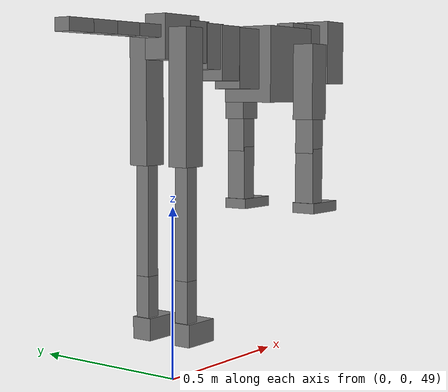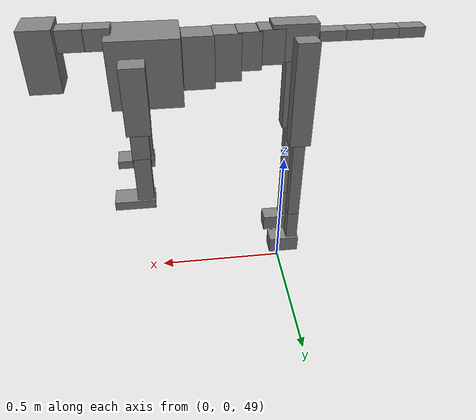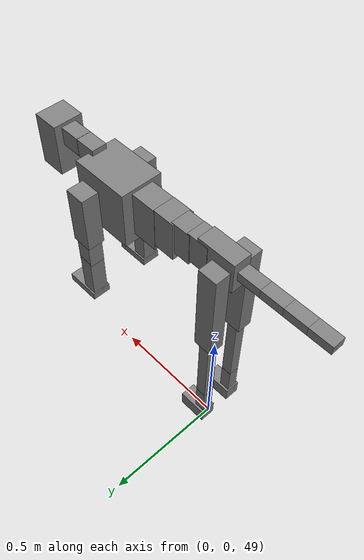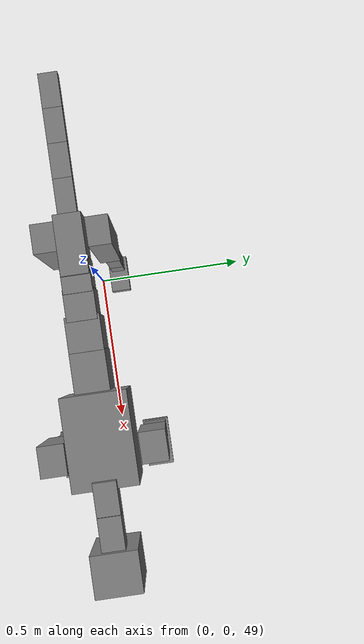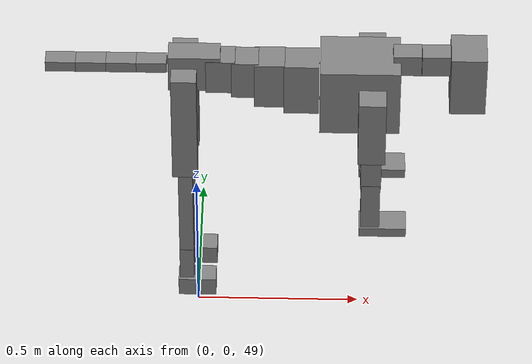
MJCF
<mujoco model="dog">

    <default>
        <joint armature="0.02" stiffness="1" damping="0.2" limited="true"/>
        <geom condim="3" friction="1 0.05 0.05" margin="0.01"/>
        <motor ctrllimited="true" ctrlrange="-1.0 1.0" forcelimited="true" gear="50"/>
    </default>

    <compiler inertiafromgeom="true" angle="radian"/>

    <option timestep="0.016" iterations="50" tolerance="1e-10" solver="Newton" jacobian="dense" cone="pyramidal"/>

    <size nconmax="20000" njmax="60000" nstack="5000000"/>
    <visual>
        <map force="0.1" zfar="30"/>
        <rgba haze="0.15 0.25 0.35 1"/>
        <quality shadowsize="2048"/>
        <global offwidth="800" offheight="800"/>
    </visual>

    <asset>
        <texture type="skybox" builtin="gradient" rgb1="0.3 0.5 0.7" rgb2="0 0 0" width="512" height="512"/>
        <texture name="texplane" type="2d" builtin="checker" rgb1=".2 .3 .4" rgb2=".1 0.15 0.2" width="512" height="512"
                 mark="cross" markrgb=".8 .8 .8"/>
        <texture name="texgeom" type="cube" builtin="flat" mark="cross" width="127" height="1278" rgb1="0.8 0.6 0.4"
                 rgb2="0.8 0.6 0.4" markrgb="1 1 1" random="0.01"/>

        <material name="matplane" reflectance="0.3" texture="texplane" texrepeat="1 1" texuniform="true"/>
        <material name="matgeom" texture="texgeom" texuniform="true" rgba="0.8 0.6 .4 1"/>
    </asset>

    <worldbody>
        <geom name="floor" pos="0 0 0" size="0 0 .25" type="plane" material="matplane" condim="3"/>

        <light directional="false" diffuse=".2 .2 .2" specular="0 0 0" pos="0 0 5" dir="0 0 -1" castshadow="false"/>
        <light mode="targetbodycom" target="torso" directional="false" diffuse=".8 .8 .8" specular="0.3 0.3 0.3"
               pos="0 0 4.0" dir="0 0 -1"/>

        <body name="root" pos="0 0 50">
            <freejoint name="root_1"/>
            <geom type="box" pos="0 0 -0.02" size="0.0774  0.0358  0.063" density="2030"/>

            <body name="spine1" pos="0.054 0 0">
                <joint name="spine1_y" axis="0 1 0" range="0 0.7" limited="true"/>
                <geom type="box" pos="0.02375 0 -0.03" size="0.04375  0.0375  0.05985" density="2030"/>

                <body name="spine2" pos="0.0612 0 0">
                    <joint name="spine2_y" axis="0 1 0" range="-0.15 0.15" limited="true"/>
                    <geom type="box" pos="0.03555  0  -0.04" size="0.04055  0.039  0.06615" density="2030"/>

                    <body name="spine3" pos="0.0730 0 0">
                        <joint name="spine3_y" axis="0 1 0" range="-0.15 0.15" limited="true"/>
                        <geom type="box" pos="0.03555  0  -0.057" size="0.04555  0.0445  0.081" density="2030"/>

                        <body name="spine4" pos="0.0780 0 0">
                            <joint name="spine4_y" axis="0 1 0" range="-0.15 0.15" limited="true"/>
                            <geom type="box" pos="0.05265  0  -0.07" size="0.05265  0.045  0.09135" density="2030"/>

                            <body name="torso" pos="0.1082 0 0">
                                <joint name="torso_y" axis="0 1 0" range="-0.15 0.15" limited="true"/>
                                <geom type="box" pos="0.11925  0  -0.085" size="0.11925  0.085  0.11745"
                                      density="2030"/>

                                <body name="neck1" pos="0.2160  0   0.0180">
                                    <joint name="neck1_y" axis="0 1 0" range="-1.2  -1" limited="true"/>
                                    <geom type="box" pos="0.0423  0  0" size="0.0423  0.03  0.036" density="2325"/>

                                    <body name="neck2" pos="0.0853  0  0">
                                        <joint name="neck2_y" axis="0 1 0" range="0.1  0" limited="true"/>
                                        <geom type="box" pos="0.0423  0  0" size="0.0423  0.03  0.036" density="2325"/>

                                        <body name="head" pos="0.0853  0  0">
                                            <joint name="head_y" axis="0 1 0" range="-0.3  -0.2" limited="true"/>
                                            <geom type="box" pos="0.0531  0  -0.055" size="0.0531  0.06  0.1044"
                                                  density="4030"/>

                                        </body>
                                    </body>
                                </body>

                                <body name="front_shoulder" pos="0.156  0   -0.0480">
                                    <joint name="front_shoulder_y" axis="0 1 0" range="-1 1.5" limited="true"/>
                                    <geom type="box" pos="0 0.13 -0.0910" size="0.0409  0.0349  0.1176" density="1158"/>
                                    <geom type="box" pos="0 -0.13 -0.0910" size="0.0409  0.0349  0.1176"
                                          density="1158"/>

                                    <body name="front_elbow" pos="0  0  -0.1819">
                                        <joint name="front_elbow_y" axis="0 1 0" range="-2 0" limited="true"/>
                                        <geom type="box" pos="0 0.13 -0.0660" size="0.0306  0.0312  0.0660"
                                              density="1081"/>
                                        <geom type="box" pos="0 -0.13 -0.0660" size="0.0306  0.0312  0.0660"
                                              density="1081"/>

                                        <body name="front_wrist" pos="0  0  -0.1321">
                                            <joint name="front_wrist_y" axis="0 1 0" range="-0.2 0" limited="true"/>
                                            <geom type="box" pos="0 0.13 -0.0862" size="0.0286  0.0318  0.0994"
                                                  density="1664"/>
                                            <geom type="box" pos="0 -0.13 -0.0862" size="0.0286  0.0318  0.0994"
                                                  density="1664"/>

                                            <body name="front_finger_end" pos="0  0  -0.1725">
                                                <joint name="front_finger_y" axis="0 1 0" range="-0.4 1"
                                                       limited="true"/>
                                                <geom type="box" pos="0.0387  0.13  -0.0012"
                                                      size="0.0710  0.0387  0.0162" density="1515"/>
                                                <geom type="box" pos="0.0387  -0.13  -0.0012"
                                                      size="0.0710  0.0387  0.0162" density="1515"/>

                                            </body>

                                        </body>
                                    </body>
                                </body>

                            </body>
                        </body>
                    </body>
                </body>
            </body>

            <body name="back_hip" pos="-0.03 0 -0.018">
                <joint name="back_hip_y" axis="0 1 0" range="-1.5 0.3" limited="true"/>
                <geom type="box" pos="0 0.07 -0.1696" size="0.0381  0.0299  0.1924" density="1154"/>
                <geom type="box" pos="0 -0.07 -0.1696" size="0.0381  0.0299  0.1924" density="1154"/>

                <body name="back_knee" pos="0  0  -0.3392">
                    <joint name="back_knee_y" axis="0 1 0" range="0 2.8" limited="true"/>
                    <geom type="box" pos="0 0.07 -0.1763" size="0.0217  0.0214  0.1918" density="1227"/>
                    <geom type="box" pos="0 -0.07 -0.1763" size="0.0217  0.0214  0.1918" density="1227"/>

                    <body name="back_ankle" pos="0  0  -0.3526">
                        <joint name="back_ankle_y" axis="0 1 0" range="-2.2 0" limited="true"/>
                        <geom type="box" pos="0 0.07 -0.0617" size="0.0218  0.0218  0.0729" density="1284"/>
                        <geom type="box" pos="0 -0.07 -0.0617" size="0.0218  0.0218  0.0729" density="1284"/>

                        <body name="back_toe_end" pos="0  0  -0.1233">
                            <joint name="back_toe_y" axis="0 1 0" range="-0.4 1" limited="true"/>
                            <geom type="box" pos="0.0315  0.07  -0.0173" size="0.0578  0.0315  0.0323" density="1515"/>
                            <geom type="box" pos="0.0315  -0.07  -0.0173" size="0.0578  0.0315  0.0323" density="1515"/>

                        </body>
                    </body>
                </body>
            </body>

            <body name="tail1" pos="-0.074 0 -0.006">
                <joint name="tail1_y" axis="0 1 0" range="-0.2 0.2" limited="true"/>
                <geom type="box" pos="-0.0536  0  0" size="0.045  0.025  0.0175" density="1587"/>

                <body name="tail2" pos="-0.09 0 0">
                    <joint name="tail2_y" axis="0 1 0" range="-0.2 0.2" limited="true"/>
                    <geom type="box" pos="-0.0536  0  0" size="0.045  0.025  0.0175" density="1587"/>

                    <body name="tail3" pos="-0.09 0 0">
                        <joint name="tail3_y" axis="0 1 0" range="-0.2 0.2" limited="true"/>
                        <geom type="box" pos="-0.0536  0  0" size="0.045  0.025  0.0175" density="1587"/>

                        <body name="tail4" pos="-0.09 0 0">
                            <joint name="tail4_y" axis="0 1 0" range="-0.2 0.2" limited="true"/>
                            <geom type="box" pos="-0.0536  0  0" size="0.045  0.025  0.0175" density="1587"/>

                        </body>
                    </body>
                </body>
            </body>
        </body>
    </worldbody>

    <actuator>
        <motor joint="spine1_y" forcerange="-150 150     "/>
        <motor joint="spine2_y" forcerange="-150 150     "/>
        <motor joint="spine3_y" forcerange="-150 150     "/>
        <motor joint="spine4_y" forcerange="-150 150     "/>
        <motor joint="torso_y" forcerange="-150 150     "/>
        <motor joint="neck1_y" forcerange="-100 100       "/>
        <motor joint="neck2_y" forcerange="-100 100       "/>
        <motor joint="head_y" forcerange="-150 150       "/>
        <motor joint="front_shoulder_y" forcerange="-155.76 177.11"/>
        <motor joint="front_elbow_y" forcerange="-156.14 171.01"/>
        <motor joint="front_wrist_y" forcerange="-148.33 105.79"/>
        <motor joint="front_finger_y" forcerange="-83.20 83.22"/>
        <motor joint="back_hip_y" forcerange="-318.02 280.72"/>
        <motor joint="back_knee_y" forcerange="-302.23 208.60"/>
        <motor joint="back_angle_y" forcerange="-182.20 66.77"/>
        <motor joint="back_toe_y" forcerange="-35.67 136.57"/>
        <motor joint="tail1_y" forcerange="-50 50     "/>
        <motor joint="tail2_y" forcerange="-50 50     "/>
        <motor joint="tail3_y" forcerange="-50 50     "/>
        <motor joint="tail4_y" forcerange="-50 50     "/>
    </actuator>
</mujoco>
